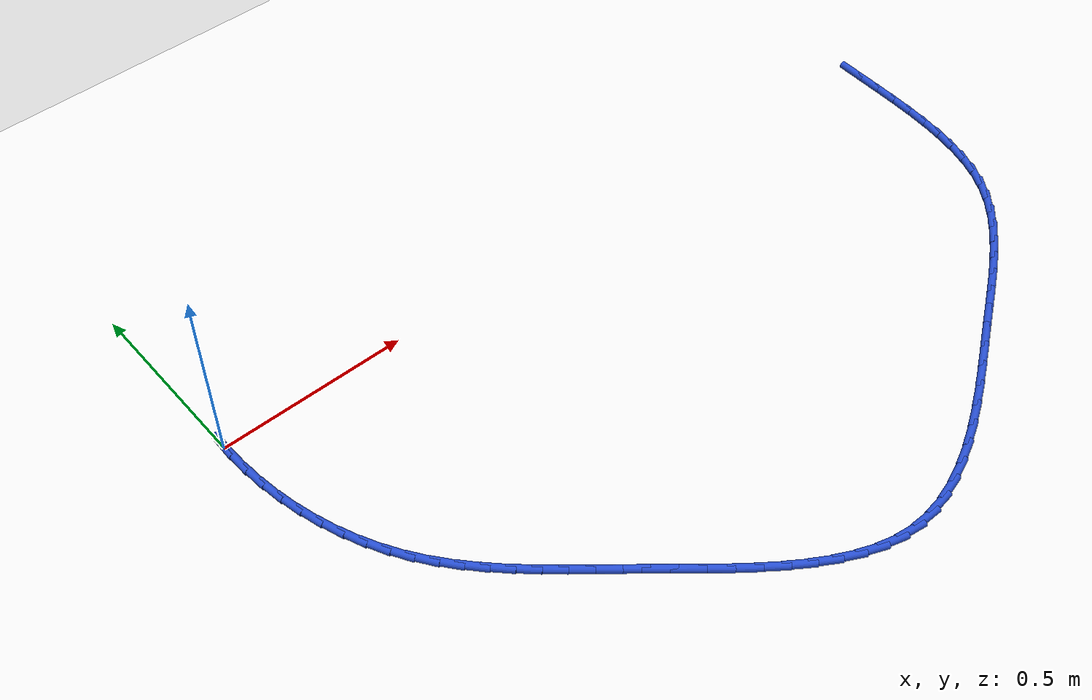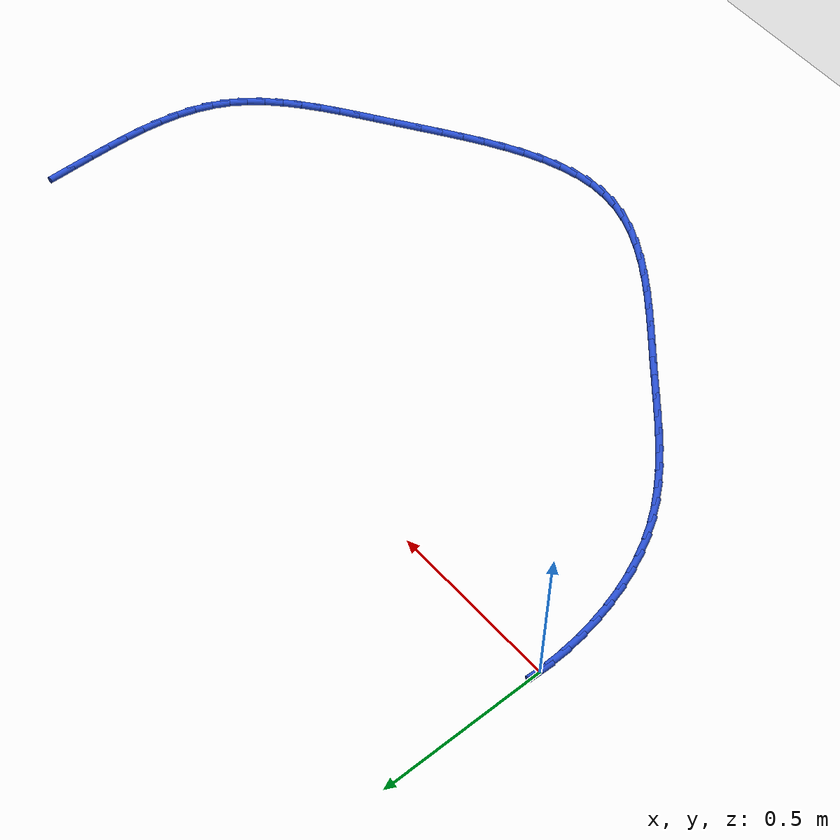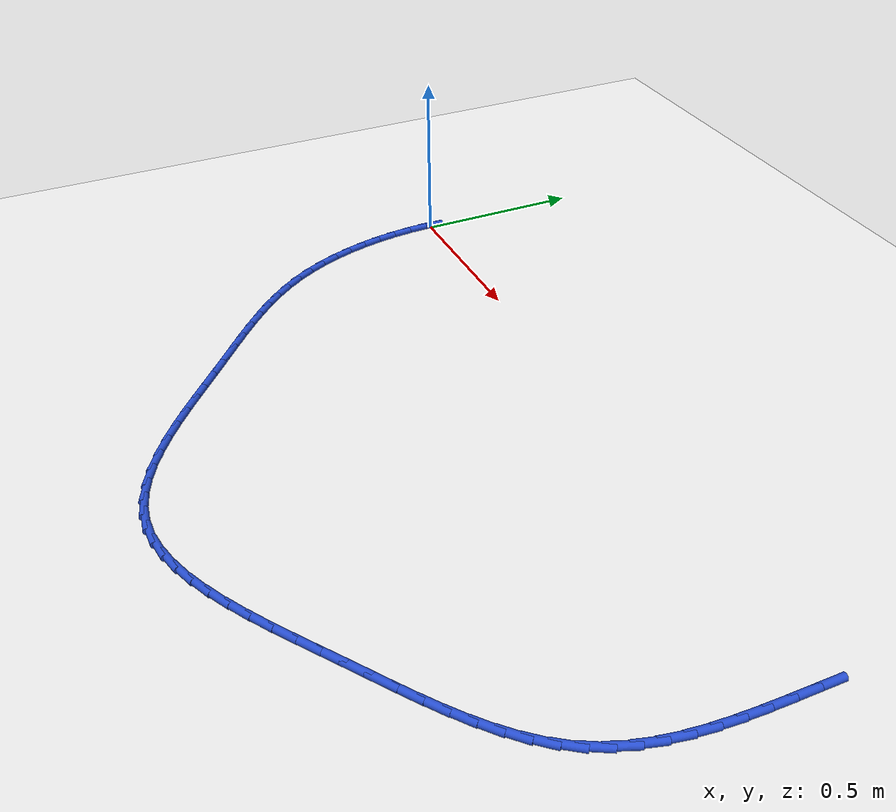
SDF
<sdf version="1.6">
 <world name="default">
  <model name="ground_plane">
   <static>1</static>
   <link name="link">
    <collision name="collision">
     <geometry><plane><normal>0 0 1</normal><size>100 100</size></plane></geometry>
     <surface><friction><ode><mu>100</mu><mu2>50</mu2></ode></friction></surface>
    </collision>
    <visual name="visual">
     <cast_shadows>0</cast_shadows>
     <geometry><plane><normal>0 0 1</normal><size>100 100</size></plane></geometry>
     <material>
      <script><uri>file://media/materials/scripts/gazebo.material</uri><name>Gazebo/WhiteGlow</name></script>
     </material>
    </visual>
   </link>
  </model>
  <model name="line">
   <link name="link_0">
    <pose>-9.020562075079397e-17 1.249000902703301e-16 0.01 0 1.57 1.5339909352170618</pose>
    <collision name="collision">
     <geometry><cylinder><radius>0.01</radius><length>0.08</length></cylinder></geometry>
    </collision>
    <visual name="visual">
     <material>
      <script><name>Gazebo/Blue</name><uri>file://media/materials/scripts/gazebo.material</uri></script>
     </material>
     <geometry><cylinder><radius>0.01</radius><length>0.08</length></cylinder></geometry>
    </visual>
   </link>
   <link name="link_61">
    <pose>2.0724994898500504 -0.04923869980880519 0.01 0 1.57 1.5549773189096283</pose>
    <collision name="collision">
     <geometry><cylinder><radius>0.01</radius><length>0.08</length></cylinder></geometry>
    </collision>
    <visual name="visual">
     <material>
      <script><name>Gazebo/Blue</name><uri>file://media/materials/scripts/gazebo.material</uri></script>
     </material>
     <geometry><cylinder><radius>0.01</radius><length>0.08</length></cylinder></geometry>
    </visual>
   </link>
   <link name="link_62">
    <pose>2.071526502002258 -0.1107410830813394 0.01 0 1.57 1.5514851418383195</pose>
    <collision name="collision">
     <geometry><cylinder><radius>0.01</radius><length>0.08</length></cylinder></geometry>
    </collision>
    <visual name="visual">
     <material>
      <script><name>Gazebo/Blue</name><uri>file://media/materials/scripts/gazebo.material</uri></script>
     </material>
     <geometry><cylinder><radius>0.01</radius><length>0.08</length></cylinder></geometry>
    </visual>
   </link>
   <link name="link_63">
    <pose>2.07035514209176 -0.17139061344095233 0.01 0 1.57 1.537343569122569</pose>
    <collision name="collision">
     <geometry><cylinder><radius>0.01</radius><length>0.08</length></cylinder></geometry>
    </collision>
    <visual name="visual">
     <material>
      <script><name>Gazebo/Blue</name><uri>file://media/materials/scripts/gazebo.material</uri></script>
     </material>
     <geometry><cylinder><radius>0.01</radius><length>0.08</length></cylinder></geometry>
    </visual>
   </link>
   <link name="link_64">
    <pose>2.0683620641290608 -0.23094727094775735 0.01 0 1.57 1.511814326244794</pose>
    <collision name="collision">
     <geometry><cylinder><radius>0.01</radius><length>0.08</length></cylinder></geometry>
    </collision>
    <visual name="visual">
     <material>
      <script><name>Gazebo/Blue</name><uri>file://media/materials/scripts/gazebo.material</uri></script>
     </material>
     <geometry><cylinder><radius>0.01</radius><length>0.08</length></cylinder></geometry>
    </visual>
   </link>
   <link name="link_65">
    <pose>2.0649239221246685 -0.2891710356618706 0.01 0 1.57 1.4738991529669818</pose>
    <collision name="collision">
     <geometry><cylinder><radius>0.01</radius><length>0.08</length></cylinder></geometry>
    </collision>
    <visual name="visual">
     <material>
      <script><name>Gazebo/Blue</name><uri>file://media/materials/scripts/gazebo.material</uri></script>
     </material>
     <geometry><cylinder><radius>0.01</radius><length>0.08</length></cylinder></geometry>
    </visual>
   </link>
   <link name="link_66">
    <pose>2.0594173700890868 -0.34582188764340754 0.01 0 1.57 1.4223947148003875</pose>
    <collision name="collision">
     <geometry><cylinder><radius>0.01</radius><length>0.08</length></cylinder></geometry>
    </collision>
    <visual name="visual">
     <material>
      <script><name>Gazebo/Blue</name><uri>file://media/materials/scripts/gazebo.material</uri></script>
     </material>
     <geometry><cylinder><radius>0.01</radius><length>0.08</length></cylinder></geometry>
    </visual>
   </link>
   <link name="link_67">
    <pose>2.0512190620328234 -0.40065980695248216 0.01 0 1.57 1.3560407839100526</pose>
    <collision name="collision">
     <geometry><cylinder><radius>0.01</radius><length>0.08</length></cylinder></geometry>
    </collision>
    <visual name="visual">
     <material>
      <script><name>Gazebo/Blue</name><uri>file://media/materials/scripts/gazebo.material</uri></script>
     </material>
     <geometry><cylinder><radius>0.01</radius><length>0.08</length></cylinder></geometry>
    </visual>
   </link>
   <link name="link_68">
    <pose>2.0397056519663845 -0.4534447736492101 0.01 0 1.57 1.2738203912564188</pose>
    <collision name="collision">
     <geometry><cylinder><radius>0.01</radius><length>0.08</length></cylinder></geometry>
    </collision>
    <visual name="visual">
     <material>
      <script><name>Gazebo/Blue</name><uri>file://media/materials/scripts/gazebo.material</uri></script>
     </material>
     <geometry><cylinder><radius>0.01</radius><length>0.08</length></cylinder></geometry>
    </visual>
   </link>
   <link name="link_69">
    <pose>2.024253793900275 -0.5039367677937067 0.01 0 1.57 1.1754592785662583</pose>
    <collision name="collision">
     <geometry><cylinder><radius>0.01</radius><length>0.08</length></cylinder></geometry>
    </collision>
    <visual name="visual">
     <material>
      <script><name>Gazebo/Blue</name><uri>file://media/materials/scripts/gazebo.material</uri></script>
     </material>
     <geometry><cylinder><radius>0.01</radius><length>0.08</length></cylinder></geometry>
    </visual>
   </link>
   <link name="link_70">
    <pose>2.0042401418450013 -0.5518957694460874 0.01 0 1.57 1.0623011521228038</pose>
    <collision name="collision">
     <geometry><cylinder><radius>0.01</radius><length>0.08</length></cylinder></geometry>
    </collision>
    <visual name="visual">
     <material>
      <script><name>Gazebo/Blue</name><uri>file://media/materials/scripts/gazebo.material</uri></script>
     </material>
     <geometry><cylinder><radius>0.01</radius><length>0.08</length></cylinder></geometry>
    </visual>
   </link>
   <link name="link_71">
    <pose>1.9790512127795725 -0.5970870498656269 0.01 0 1.57 0.9477918660256547</pose>
    <collision name="collision">
     <geometry><cylinder><radius>0.01</radius><length>0.08</length></cylinder></geometry>
    </collision>
    <visual name="visual">
     <material>
      <script><name>Gazebo/Blue</name><uri>file://media/materials/scripts/gazebo.material</uri></script>
     </material>
     <geometry><cylinder><radius>0.01</radius><length>0.08</length></cylinder></geometry>
    </visual>
   </link>
   <link name="link_72">
    <pose>1.9485549148857375 -0.6395341328577008 0.01 0 1.57 0.8496679087872805</pose>
    <collision name="collision">
     <geometry><cylinder><radius>0.01</radius><length>0.08</length></cylinder></geometry>
    </collision>
    <visual name="visual">
     <material>
      <script><name>Gazebo/Blue</name><uri>file://media/materials/scripts/gazebo.material</uri></script>
     </material>
     <geometry><cylinder><radius>0.01</radius><length>0.08</length></cylinder></geometry>
    </visual>
   </link>
   <link name="link_73">
    <pose>1.9133079399185022 -0.6796300548205434 0.01 0 1.57 0.7696465677419582</pose>
    <collision name="collision">
     <geometry><cylinder><radius>0.01</radius><length>0.08</length></cylinder></geometry>
    </collision>
    <visual name="visual">
     <material>
      <script><name>Gazebo/Blue</name><uri>file://media/materials/scripts/gazebo.material</uri></script>
     </material>
     <geometry><cylinder><radius>0.01</radius><length>0.08</length></cylinder></geometry>
    </visual>
   </link>
   <link name="link_74">
    <pose>1.8739199970825602 -0.7177962944905381 0.01 0 1.57 0.7068795664669828</pose>
    <collision name="collision">
     <geometry><cylinder><radius>0.01</radius><length>0.08</length></cylinder></geometry>
    </collision>
    <visual name="visual">
     <material>
      <script><name>Gazebo/Blue</name><uri>file://media/materials/scripts/gazebo.material</uri></script>
     </material>
     <geometry><cylinder><radius>0.01</radius><length>0.08</length></cylinder></geometry>
    </visual>
   </link>
   <link name="link_75">
    <pose>1.8310007955826069 -0.7544543306040662 0.01 0 1.57 0.6599193885612749</pose>
    <collision name="collision">
     <geometry><cylinder><radius>0.01</radius><length>0.08</length></cylinder></geometry>
    </collision>
    <visual name="visual">
     <material>
      <script><name>Gazebo/Blue</name><uri>file://media/materials/scripts/gazebo.material</uri></script>
     </material>
     <geometry><cylinder><radius>0.01</radius><length>0.08</length></cylinder></geometry>
    </visual>
   </link>
   <link name="link_76">
    <pose>1.7851600446233367 -0.7900256418975113 0.01 0 1.57 0.6272460706844596</pose>
    <collision name="collision">
     <geometry><cylinder><radius>0.01</radius><length>0.08</length></cylinder></geometry>
    </collision>
    <visual name="visual">
     <material>
      <script><name>Gazebo/Blue</name><uri>file://media/materials/scripts/gazebo.material</uri></script>
     </material>
     <geometry><cylinder><radius>0.01</radius><length>0.08</length></cylinder></geometry>
    </visual>
   </link>
   <link name="link_77">
    <pose>1.7370074534094442 -0.8249317071072562 0.01 0 1.57 0.6075417733507725</pose>
    <collision name="collision">
     <geometry><cylinder><radius>0.01</radius><length>0.08</length></cylinder></geometry>
    </collision>
    <visual name="visual">
     <material>
      <script><name>Gazebo/Blue</name><uri>file://media/materials/scripts/gazebo.material</uri></script>
     </material>
     <geometry><cylinder><radius>0.01</radius><length>0.08</length></cylinder></geometry>
    </visual>
   </link>
   <link name="link_78">
    <pose>1.6871527311456227 -0.8595940049696837 0.01 0 1.57 0.59980199488126</pose>
    <collision name="collision">
     <geometry><cylinder><radius>0.01</radius><length>0.08</length></cylinder></geometry>
    </collision>
    <visual name="visual">
     <material>
      <script><name>Gazebo/Blue</name><uri>file://media/materials/scripts/gazebo.material</uri></script>
     </material>
     <geometry><cylinder><radius>0.01</radius><length>0.08</length></cylinder></geometry>
    </visual>
   </link>
   <link name="link_79">
    <pose>1.6362055870365686 -0.8944340142211762 0.01 0 1.57 0.6026378980627083</pose>
    <collision name="collision">
     <geometry><cylinder><radius>0.01</radius><length>0.08</length></cylinder></geometry>
    </collision>
    <visual name="visual">
     <material>
      <script><name>Gazebo/Blue</name><uri>file://media/materials/scripts/gazebo.material</uri></script>
     </material>
     <geometry><cylinder><radius>0.01</radius><length>0.08</length></cylinder></geometry>
    </visual>
   </link>
   <link name="link_80">
    <pose>1.5847558575527452 -0.9298322701814656 0.01 0 1.57 0.6049971829946855</pose>
    <collision name="collision">
     <geometry><cylinder><radius>0.01</radius><length>0.08</length></cylinder></geometry>
    </collision>
    <visual name="visual">
     <material>
      <script><name>Gazebo/Blue</name><uri>file://media/materials/scripts/gazebo.material</uri></script>
     </material>
     <geometry><cylinder><radius>0.01</radius><length>0.08</length></cylinder></geometry>
    </visual>
   </link>
   <link name="link_81">
    <pose>1.5330953970626315 -0.9655553813087651 0.01 0 1.57 0.5986423525917354</pose>
    <collision name="collision">
     <geometry><cylinder><radius>0.01</radius><length>0.08</length></cylinder></geometry>
    </collision>
    <visual name="visual">
     <material>
      <script><name>Gazebo/Blue</name><uri>file://media/materials/scripts/gazebo.material</uri></script>
     </material>
     <geometry><cylinder><radius>0.01</radius><length>0.08</length></cylinder></geometry>
    </visual>
   </link>
   <link name="link_82">
    <pose>1.4812863515617767 -1.0008966922661793 0.01 0 1.57 0.5831812125133337</pose>
    <collision name="collision">
     <geometry><cylinder><radius>0.01</radius><length>0.08</length></cylinder></geometry>
    </collision>
    <visual name="visual">
     <material>
      <script><name>Gazebo/Blue</name><uri>file://media/materials/scripts/gazebo.material</uri></script>
     </material>
     <geometry><cylinder><radius>0.01</radius><length>0.08</length></cylinder></geometry>
    </visual>
   </link>
   <link name="link_83">
    <pose>1.4293849395682343 -1.035137335447585 0.01 0 1.57 0.5580471441335132</pose>
    <collision name="collision">
     <geometry><cylinder><radius>0.01</radius><length>0.08</length></cylinder></geometry>
    </collision>
    <visual name="visual">
     <material>
      <script><name>Gazebo/Blue</name><uri>file://media/materials/scripts/gazebo.material</uri></script>
     </material>
     <geometry><cylinder><radius>0.01</radius><length>0.08</length></cylinder></geometry>
    </visual>
   </link>
   <link name="link_84">
    <pose>1.377447379600056 -1.0675584432468572 0.01 0 1.57 0.5222705803985973</pose>
    <collision name="collision">
     <geometry><cylinder><radius>0.01</radius><length>0.08</length></cylinder></geometry>
    </collision>
    <visual name="visual">
     <material>
      <script><name>Gazebo/Blue</name><uri>file://media/materials/scripts/gazebo.material</uri></script>
     </material>
     <geometry><cylinder><radius>0.01</radius><length>0.08</length></cylinder></geometry>
    </visual>
   </link>
   <link name="link_85">
    <pose>1.325529890175296 -1.0974411480578732 0.01 0 1.57 0.4744651709983533</pose>
    <collision name="collision">
     <geometry><cylinder><radius>0.01</radius><length>0.08</length></cylinder></geometry>
    </collision>
    <visual name="visual">
     <material>
      <script><name>Gazebo/Blue</name><uri>file://media/materials/scripts/gazebo.material</uri></script>
     </material>
     <geometry><cylinder><radius>0.01</radius><length>0.08</length></cylinder></geometry>
    </visual>
   </link>
   <link name="link_86">
    <pose>1.2736886898120077 -1.1240665822745075 0.01 0 1.57 0.41284445480469056</pose>
    <collision name="collision">
     <geometry><cylinder><radius>0.01</radius><length>0.08</length></cylinder></geometry>
    </collision>
    <visual name="visual">
     <material>
      <script><name>Gazebo/Blue</name><uri>file://media/materials/scripts/gazebo.material</uri></script>
     </material>
     <geometry><cylinder><radius>0.01</radius><length>0.08</length></cylinder></geometry>
    </visual>
   </link>
   <link name="link_87">
    <pose>1.2219799970282448 -1.1467158782906366 0.01 0 1.57 0.33533065416399027</pose>
    <collision name="collision">
     <geometry><cylinder><radius>0.01</radius><length>0.08</length></cylinder></geometry>
    </collision>
    <visual name="visual">
     <material>
      <script><name>Gazebo/Blue</name><uri>file://media/materials/scripts/gazebo.material</uri></script>
     </material>
     <geometry><cylinder><radius>0.01</radius><length>0.08</length></cylinder></geometry>
    </visual>
   </link>
   <link name="link_88">
    <pose>1.1704600303420594 -1.1646701685001364 0.01 0 1.57 0.23986313938044046</pose>
    <collision name="collision">
     <geometry><cylinder><radius>0.01</radius><length>0.08</length></cylinder></geometry>
    </collision>
    <visual name="visual">
     <material>
      <script><name>Gazebo/Blue</name><uri>file://media/materials/scripts/gazebo.material</uri></script>
     </material>
     <geometry><cylinder><radius>0.01</radius><length>0.08</length></cylinder></geometry>
    </visual>
   </link>
   <link name="link_89">
    <pose>1.1191850082715042 -1.1772105852968822 0.01 0 1.57 0.1250492201585565</pose>
    <collision name="collision">
     <geometry><cylinder><radius>0.01</radius><length>0.08</length></cylinder></geometry>
    </collision>
    <visual name="visual">
     <material>
      <script><name>Gazebo/Blue</name><uri>file://media/materials/scripts/gazebo.material</uri></script>
     </material>
     <geometry><cylinder><radius>0.01</radius><length>0.08</length></cylinder></geometry>
    </visual>
   </link>
   <link name="link_90">
    <pose>1.068211149334635 -1.1836182610747508 0.01 0 1.57 -0.008770295538739287</pose>
    <collision name="collision">
     <geometry><cylinder><radius>0.01</radius><length>0.08</length></cylinder></geometry>
    </collision>
    <visual name="visual">
     <material>
      <script><name>Gazebo/Blue</name><uri>file://media/materials/scripts/gazebo.material</uri></script>
     </material>
     <geometry><cylinder><radius>0.01</radius><length>0.08</length></cylinder></geometry>
    </visual>
   </link>
   <link name="link_91">
    <pose>1.0175946720495028 -1.1831743282276173 0.01 0 1.57 -0.1542608233615301</pose>
    <collision name="collision">
     <geometry><cylinder><radius>0.01</radius><length>0.08</length></cylinder></geometry>
    </collision>
    <visual name="visual">
     <material>
      <script><name>Gazebo/Blue</name><uri>file://media/materials/scripts/gazebo.material</uri></script>
     </material>
     <geometry><cylinder><radius>0.01</radius><length>0.08</length></cylinder></geometry>
    </visual>
   </link>
   <link name="link_92">
    <pose>0.9673837510919172 -1.1753667207591056 0.01 0 1.57 -0.2863969734028326</pose>
    <collision name="collision">
     <geometry><cylinder><radius>0.01</radius><length>0.08</length></cylinder></geometry>
    </collision>
    <visual name="visual">
     <material>
      <script><name>Gazebo/Blue</name><uri>file://media/materials/scripts/gazebo.material</uri></script>
     </material>
     <geometry><cylinder><radius>0.01</radius><length>0.08</length></cylinder></geometry>
    </visual>
   </link>
   <link name="link_93">
    <pose>0.9175869439045616 -1.1607019042818436 0.01 0 1.57 -0.3969439906093517</pose>
    <collision name="collision">
     <geometry><cylinder><radius>0.01</radius><length>0.08</length></cylinder></geometry>
    </collision>
    <visual name="visual">
     <material>
      <script><name>Gazebo/Blue</name><uri>file://media/materials/scripts/gazebo.material</uri></script>
     </material>
     <geometry><cylinder><radius>0.01</radius><length>0.08</length></cylinder></geometry>
    </visual>
   </link>
   <link name="link_94">
    <pose>0.8682006319286081 -1.1399993809694429 0.01 0 1.57 -0.48674536313694716</pose>
    <collision name="collision">
     <geometry><cylinder><radius>0.01</radius><length>0.08</length></cylinder></geometry>
    </collision>
    <visual name="visual">
     <material>
      <script><name>Gazebo/Blue</name><uri>file://media/materials/scripts/gazebo.material</uri></script>
     </material>
     <geometry><cylinder><radius>0.01</radius><length>0.08</length></cylinder></geometry>
    </visual>
   </link>
   <link name="link_95">
    <pose>0.8192211933055574 -1.1140787378277222 0.01 0 1.57 -0.557993012823518</pose>
    <collision name="collision">
     <geometry><cylinder><radius>0.01</radius><length>0.08</length></cylinder></geometry>
    </collision>
    <visual name="visual">
     <material>
      <script><name>Gazebo/Blue</name><uri>file://media/materials/scripts/gazebo.material</uri></script>
     </material>
     <geometry><cylinder><radius>0.01</radius><length>0.08</length></cylinder></geometry>
    </visual>
   </link>
   <link name="link_96">
    <pose>0.7706450061769102 -1.0837595618625004 0.01 0 1.57 -0.6131532031910103</pose>
    <collision name="collision">
     <geometry><cylinder><radius>0.01</radius><length>0.08</length></cylinder></geometry>
    </collision>
    <visual name="visual">
     <material>
      <script><name>Gazebo/Blue</name><uri>file://media/materials/scripts/gazebo.material</uri></script>
     </material>
     <geometry><cylinder><radius>0.01</radius><length>0.08</length></cylinder></geometry>
    </visual>
   </link>
   <link name="link_97">
    <pose>0.7224684486841695 -1.0498614400795983 0.01 0 1.57 -0.6544217366231888</pose>
    <collision name="collision">
     <geometry><cylinder><radius>0.01</radius><length>0.08</length></cylinder></geometry>
    </collision>
    <visual name="visual">
     <material>
      <script><name>Gazebo/Blue</name><uri>file://media/materials/scripts/gazebo.material</uri></script>
     </material>
     <geometry><cylinder><radius>0.01</radius><length>0.08</length></cylinder></geometry>
    </visual>
   </link>
   <link name="link_98">
    <pose>0.6746878989688359 -1.0132039594848345 0.01 0 1.57 -0.6835149186947256</pose>
    <collision name="collision">
     <geometry><cylinder><radius>0.01</radius><length>0.08</length></cylinder></geometry>
    </collision>
    <visual name="visual">
     <material>
      <script><name>Gazebo/Blue</name><uri>file://media/materials/scripts/gazebo.material</uri></script>
     </material>
     <geometry><cylinder><radius>0.01</radius><length>0.08</length></cylinder></geometry>
    </visual>
   </link>
   <link name="link_99">
    <pose>0.6272997351724107 -0.974606707084029 0.01 0 1.57 -0.7016206841866344</pose>
    <collision name="collision">
     <geometry><cylinder><radius>0.01</radius><length>0.08</length></cylinder></geometry>
    </collision>
    <visual name="visual">
     <material>
      <script><name>Gazebo/Blue</name><uri>file://media/materials/scripts/gazebo.material</uri></script>
     </material>
     <geometry><cylinder><radius>0.01</radius><length>0.08</length></cylinder></geometry>
    </visual>
   </link>
   <link name="link_100">
    <pose>0.580300335436395 -0.9348892698830003 0.01 0 1.57 -0.7094043325798115</pose>
    <collision name="collision">
     <geometry><cylinder><radius>0.01</radius><length>0.08</length></cylinder></geometry>
    </collision>
    <visual name="visual">
     <material>
      <script><name>Gazebo/Blue</name><uri>file://media/materials/scripts/gazebo.material</uri></script>
     </material>
     <geometry><cylinder><radius>0.01</radius><length>0.08</length></cylinder></geometry>
    </visual>
   </link>
   <link name="link_101">
    <pose>0.5336860779022915 -0.8948712348875691 0.01 0 1.57 -0.7070788853605837</pose>
    <collision name="collision">
     <geometry><cylinder><radius>0.01</radius><length>0.08</length></cylinder></geometry>
    </collision>
    <visual name="visual">
     <material>
      <script><name>Gazebo/Blue</name><uri>file://media/materials/scripts/gazebo.material</uri></script>
     </material>
     <geometry><cylinder><radius>0.01</radius><length>0.08</length></cylinder></geometry>
    </visual>
   </link>
   <link name="link_102">
    <pose>0.48745440430582926 -0.8553680188298473 0.01 0 1.57 -0.7006346575959334</pose>
    <collision name="collision">
     <geometry><cylinder><radius>0.01</radius><length>0.08</length></cylinder></geometry>
    </collision>
    <visual name="visual">
     <material>
      <script><name>Gazebo/Blue</name><uri>file://media/materials/scripts/gazebo.material</uri></script>
     </material>
     <geometry><cylinder><radius>0.01</radius><length>0.08</length></cylinder></geometry>
    </visual>
   </link>
   <link name="link_103">
    <pose>0.4417070952604776 -0.8167859334780474 0.01 0 1.57 -0.7016147111820872</pose>
    <collision name="collision">
     <geometry><cylinder><radius>0.01</radius><length>0.08</length></cylinder></geometry>
    </collision>
    <visual name="visual">
     <material>
      <script><name>Gazebo/Blue</name><uri>file://media/materials/scripts/gazebo.material</uri></script>
     </material>
     <geometry><cylinder><radius>0.01</radius><length>0.08</length></cylinder></geometry>
    </visual>
   </link>
   <link name="link_104">
    <pose>0.39673663882834176 -0.7787835409064963 0.01 0 1.57 -0.7116630173169475</pose>
    <collision name="collision">
     <geometry><cylinder><radius>0.01</radius><length>0.08</length></cylinder></geometry>
    </collision>
    <visual name="visual">
     <material>
      <script><name>Gazebo/Blue</name><uri>file://media/materials/scripts/gazebo.material</uri></script>
     </material>
     <geometry><cylinder><radius>0.01</radius><length>0.08</length></cylinder></geometry>
    </visual>
   </link>
   <link name="link_105">
    <pose>0.352855855608899 -0.7409396808257469 0.01 0 1.57 -0.7312003328295252</pose>
    <collision name="collision">
     <geometry><cylinder><radius>0.01</radius><length>0.08</length></cylinder></geometry>
    </collision>
    <visual name="visual">
     <material>
      <script><name>Gazebo/Blue</name><uri>file://media/materials/scripts/gazebo.material</uri></script>
     </material>
     <geometry><cylinder><radius>0.01</radius><length>0.08</length></cylinder></geometry>
    </visual>
   </link>
   <link name="link_106">
    <pose>0.31037756620162515 -0.7028331929463515 0.01 0 1.57 -0.7606060296428226</pose>
    <collision name="collision">
     <geometry><cylinder><radius>0.01</radius><length>0.08</length></cylinder></geometry>
    </collision>
    <visual name="visual">
     <material>
      <script><name>Gazebo/Blue</name><uri>file://media/materials/scripts/gazebo.material</uri></script>
     </material>
     <geometry><cylinder><radius>0.01</radius><length>0.08</length></cylinder></geometry>
    </visual>
   </link>
   <link name="link_107">
    <pose>0.2696145912059963 -0.6640429169788624 0.01 0 1.57 -0.8001546073048685</pose>
    <collision name="collision">
     <geometry><cylinder><radius>0.01</radius><length>0.08</length></cylinder></geometry>
    </collision>
    <visual name="visual">
     <material>
      <script><name>Gazebo/Blue</name><uri>file://media/materials/scripts/gazebo.material</uri></script>
     </material>
     <geometry><cylinder><radius>0.01</radius><length>0.08</length></cylinder></geometry>
    </visual>
   </link>
   <link name="link_108">
    <pose>0.2308797512214884 -0.6241476926338314 0.01 0 1.57 -0.8499160198665475</pose>
    <collision name="collision">
     <geometry><cylinder><radius>0.01</radius><length>0.08</length></cylinder></geometry>
    </collision>
    <visual name="visual">
     <material>
      <script><name>Gazebo/Blue</name><uri>file://media/materials/scripts/gazebo.material</uri></script>
     </material>
     <geometry><cylinder><radius>0.01</radius><length>0.08</length></cylinder></geometry>
    </visual>
   </link>
   <link name="link_109">
    <pose>0.19448586684757863 -0.582726359621812 0.01 0 1.57 -0.9096242514315906</pose>
    <collision name="collision">
     <geometry><cylinder><radius>0.01</radius><length>0.08</length></cylinder></geometry>
    </collision>
    <visual name="visual">
     <material>
      <script><name>Gazebo/Blue</name><uri>file://media/materials/scripts/gazebo.material</uri></script>
     </material>
     <geometry><cylinder><radius>0.01</radius><length>0.08</length></cylinder></geometry>
    </visual>
   </link>
   <link name="link_110">
    <pose>0.16074575868374277 -0.539357757653356 0.01 0 1.57 -0.9785298999543605</pose>
    <collision name="collision">
     <geometry><cylinder><radius>0.01</radius><length>0.08</length></cylinder></geometry>
    </collision>
    <visual name="visual">
     <material>
      <script><name>Gazebo/Blue</name><uri>file://media/materials/scripts/gazebo.material</uri></script>
     </material>
     <geometry><cylinder><radius>0.01</radius><length>0.08</length></cylinder></geometry>
    </visual>
   </link>
   <link name="link_111">
    <pose>0.1299721213074584 -0.4936210374480858 0.01 0 1.57 -1.0525709667105179</pose>
    <collision name="collision">
     <geometry><cylinder><radius>0.01</radius><length>0.08</length></cylinder></geometry>
    </collision>
    <visual name="visual">
     <material>
      <script><name>Gazebo/Blue</name><uri>file://media/materials/scripts/gazebo.material</uri></script>
     </material>
     <geometry><cylinder><radius>0.01</radius><length>0.08</length></cylinder></geometry>
    </visual>
   </link>
   <link name="link_112">
    <pose>0.10240484566017836 -0.4452750214603403 0.01 0 1.57 -1.1237211823267124</pose>
    <collision name="collision">
     <geometry><cylinder><radius>0.01</radius><length>0.08</length></cylinder></geometry>
    </collision>
    <visual name="visual">
     <material>
      <script><name>Gazebo/Blue</name><uri>file://media/materials/scripts/gazebo.material</uri></script>
     </material>
     <geometry><cylinder><radius>0.01</radius><length>0.08</length></cylinder></geometry>
    </visual>
   </link>
   <link name="link_113">
    <pose>0.07808903091283316 -0.39455925779540224 0.01 0 1.57 -1.1911901202436554</pose>
    <collision name="collision">
     <geometry><cylinder><radius>0.01</radius><length>0.08</length></cylinder></geometry>
    </collision>
    <visual name="visual">
     <material>
      <script><name>Gazebo/Blue</name><uri>file://media/materials/scripts/gazebo.material</uri></script>
     </material>
     <geometry><cylinder><radius>0.01</radius><length>0.08</length></cylinder></geometry>
    </visual>
   </link>
   <link name="link_114">
    <pose>0.05703754334066547 -0.34179284196303966 0.01 0 1.57 -1.2555282860952093</pose>
    <collision name="collision">
     <geometry><cylinder><radius>0.01</radius><length>0.08</length></cylinder></geometry>
    </collision>
    <visual name="visual">
     <material>
      <script><name>Gazebo/Blue</name><uri>file://media/materials/scripts/gazebo.material</uri></script>
     </material>
     <geometry><cylinder><radius>0.01</radius><length>0.08</length></cylinder></geometry>
    </visual>
   </link>
   <link name="link_115">
    <pose>0.03926324921891816 -0.2872948694730208 0.01 0 1.57 -1.3173076509418773</pose>
    <collision name="collision">
     <geometry><cylinder><radius>0.01</radius><length>0.08</length></cylinder></geometry>
    </collision>
    <visual name="visual">
     <material>
      <script><name>Gazebo/Blue</name><uri>file://media/materials/scripts/gazebo.material</uri></script>
     </material>
     <geometry><cylinder><radius>0.01</radius><length>0.08</length></cylinder></geometry>
    </visual>
   </link>
   <link name="link_116">
    <pose>0.024779014822834785 -0.2313844358351156 0.01 0 1.57 -1.3771051935215834</pose>
    <collision name="collision">
     <geometry><cylinder><radius>0.01</radius><length>0.08</length></cylinder></geometry>
    </collision>
    <visual name="visual">
     <material>
      <script><name>Gazebo/Blue</name><uri>file://media/materials/scripts/gazebo.material</uri></script>
     </material>
     <geometry><cylinder><radius>0.01</radius><length>0.08</length></cylinder></geometry>
    </visual>
   </link>
   <link name="link_117">
    <pose>0.013597706427658196 -0.1743806365590922 0.01 0 1.57 -1.435494804518541</pose>
    <collision name="collision">
     <geometry><cylinder><radius>0.01</radius><length>0.08</length></cylinder></geometry>
    </collision>
    <visual name="visual">
     <material>
      <script><name>Gazebo/Blue</name><uri>file://media/materials/scripts/gazebo.material</uri></script>
     </material>
     <geometry><cylinder><radius>0.01</radius><length>0.08</length></cylinder></geometry>
    </visual>
   </link>
   <link name="link_118">
    <pose>0.005732190308631455 -0.11660256715471942 0.01 0 1.57 -1.493045004786049</pose>
    <collision name="collision">
     <geometry><cylinder><radius>0.01</radius><length>0.08</length></cylinder></geometry>
    </collision>
    <visual name="visual">
     <material>
      <script><name>Gazebo/Blue</name><uri>file://media/materials/scripts/gazebo.material</uri></script>
     </material>
     <geometry><cylinder><radius>0.01</radius><length>0.08</length></cylinder></geometry>
    </visual>
   </link>
   <link name="link_119">
    <pose>0.0011953327409976195 -0.05836932313176524 0.01 0 1.57 -1.5503204052126878</pose>
    <collision name="collision">
     <geometry><cylinder><radius>0.01</radius><length>0.08</length></cylinder></geometry>
    </collision>
    <visual name="visual">
     <material>
      <script><name>Gazebo/Blue</name><uri>file://media/materials/scripts/gazebo.material</uri></script>
     </material>
     <geometry><cylinder><radius>0.01</radius><length>0.08</length></cylinder></geometry>
    </visual>
   </link>
   <link name="link_120">
    <pose>-1.0061396160665481e-16 1.8041124150158794e-16 0.01 0 1.57 1.533707389571839</pose>
    <collision name="collision">
     <geometry><cylinder><radius>0.01</radius><length>0.08</length></cylinder></geometry>
    </collision>
    <visual name="visual">
     <material>
      <script><name>Gazebo/Blue</name><uri>file://media/materials/scripts/gazebo.material</uri></script>
     </material>
     <geometry><cylinder><radius>0.01</radius><length>0.08</length></cylinder></geometry>
    </visual>
   </link>
  </model>
 </world>
</sdf>
